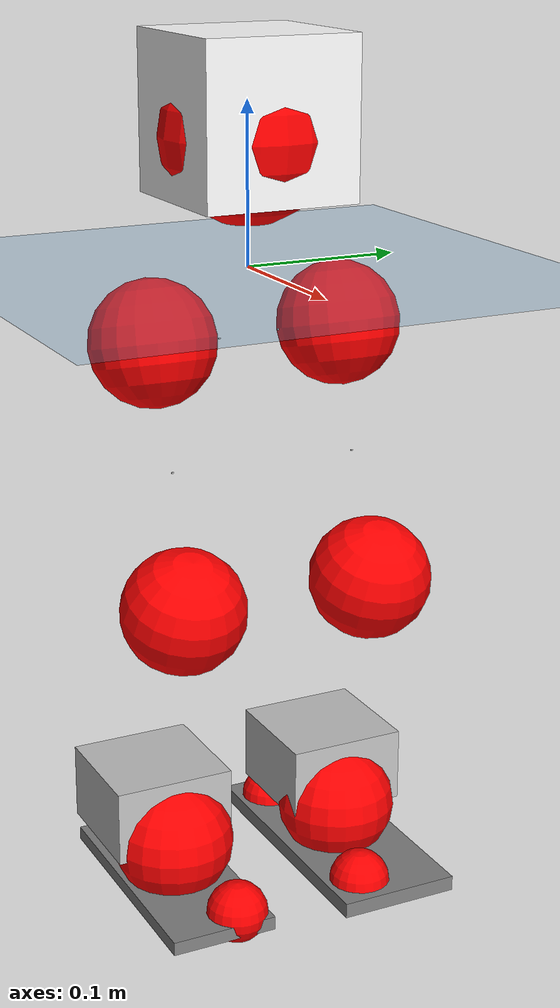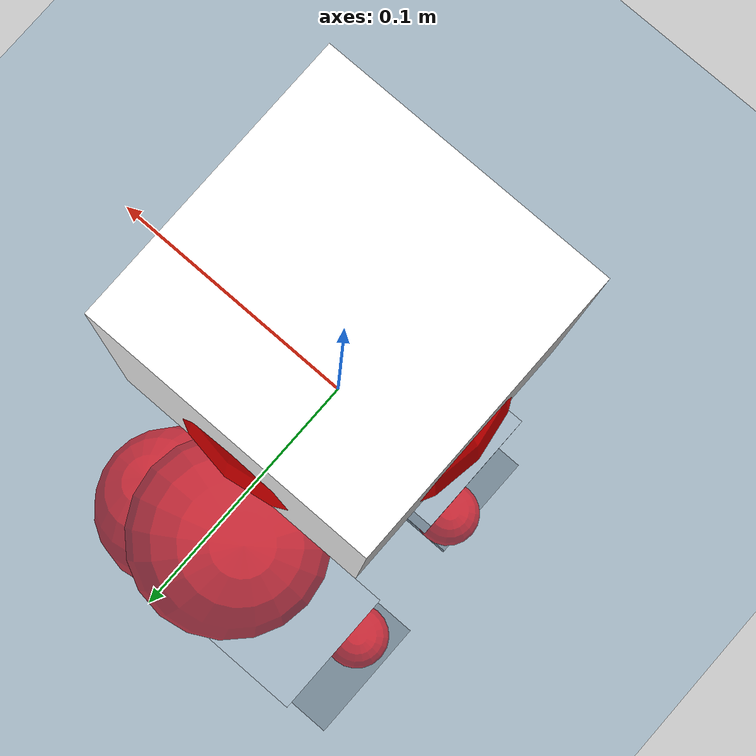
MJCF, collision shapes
<mujoco model="pi_12dof_release_v1">
  <compiler angle="radian" assetdir="assets" balanceinertia="true" inertiafromgeom="false"/>

  <option timestep="0.005" density="1.2" viscosity="2e-05"/>

  <size nkey="1"/>

  <visual>
    <quality shadowsize="8192"/>
    <map shadowclip="0.5"/>
  </visual>

  <default>
    <default class="/">
      <joint armature="0.01" damping="0.01" frictionloss="0.01"/>
      <geom contype="0" conaffinity="0" group="1" solref="-1000 -80"/>
      <site size="0.01 0.005 0.005" group="5"/>
      <general forcelimited="true" biastype="affine" gainprm="20" biasprm="0 -20 -0.5"/>
      <default class="foot">
        <geom size="0.0845 0.036 0.005" type="box" condim="6" group="4" priority="1" friction="0.9 0.2 0.2" solimp="0.015 1 0.005"/>
      </default>
      <default class="reward_collision_sphere">
        <geom group="5" rgba="1 0 0 1"/>
      </default>
    </default>
  </default>

  <asset>
    <texture type="skybox" colorspace="auto" name="//unnamed_texture_0" builtin="gradient" rgb1="0.95 0.95 0.95" rgb2="0.95 0.95 0.95" width="100" height="600"/>
    <texture type="2d" colorspace="auto" name="texplane" builtin="checker" rgb1="0.345 0.575 0.748" rgb2="0.345 0.575 0.748" markrgb="1 1 1" width="512" height="512"/>
    <material name="MatPlane" class="/" texture="texplane" texuniform="true" texrepeat="2 2" specular="0.9"/>
    <mesh name="baselink_1" class="/" file="baselink_1.STL"/>
    <mesh name="r_hip_pitch_link" class="/" file="r_hip_pitch_link.STL"/>
    <mesh name="r_hip_roll_link" class="/" file="r_hip_roll_link.STL"/>
    <mesh name="r_thigh_link" class="/" file="r_thigh_link.STL"/>
    <mesh name="r_calf_link" class="/" file="r_calf_link.STL"/>
    <mesh name="r_ankle_pitch_link" class="/" file="r_ankle_pitch_link.STL"/>
    <mesh name="r_ankle_roll_link" class="/" file="r_ankle_roll_link.STL"/>
    <mesh name="l_hip_pitch_link" class="/" file="l_hip_pitch_link.STL"/>
    <mesh name="l_hip_roll_link" class="/" file="l_hip_roll_link.STL"/>
    <mesh name="l_thigh_link" class="/" file="l_thigh_link.STL"/>
    <mesh name="l_calf_link" class="/" file="l_calf_link.STL"/>
    <mesh name="l_ankle_pitch_link" class="/" file="l_ankle_pitch_link.STL"/>
    <mesh name="l_ankle_roll_link" class="/" file="l_ankle_roll_link.STL"/>
  </asset>

  <worldbody>
    <geom name="floor" class="/" size="100 100 0.125" type="plane" group="0" material="MatPlane"/>
    <light name="toplight_shadow" class="/" pos="0 0 5" dir="0.0990148 0.0990148 -0.990148" type="directional" ambient="0.04 0.04 0.04" diffuse="0.55 0.55 0.55" specular="0.12 0.12 0.12"/>
    <light name="toplight_fill" class="/" pos="0 0 5" dir="0.0990148 0.0990148 -0.990148" type="directional" castshadow="false" ambient="0.04 0.04 0.04" diffuse="0.3 0.3 0.3" specular="0.08 0.08 0.08"/>
    <body name="trunk" pos="0.000150002 6.17497e-06 -0.00271565" quat="1 0.000101624 2.08631e-05 3.34294e-05">
      <inertial pos="0.00149893 0.00237073 0.0500715" quat="0.695306 0.00967513 0.00940654 0.718587" mass="1.9796" diaginertia="0.00844795 0.00291334 0.00906571"/>
      <joint name="//unnamed_joint_0" type="free"/>
      <geom name="//unnamed_geom_1" class="/" type="mesh" density="0" rgba="1 1 1 1" mesh="baselink_1"/>
      <geom name="//unnamed_geom_2" class="/" size="0.0490834 0.0490834 0.0490834" pos="0 0 0.0938844" type="box" rgba="1 1 1 1"/>
      <geom name="//unnamed_geom_3" class="reward_collision_sphere" size="0.0539917" pos="0 0 0.0821489"/>
      <site name="imu" class="/" pos="0.00246718 -0.0103274 0.0037992" size="0.00981668"/>
      <camera name="track" class="/" pos="0 -1.60543 0" quat="0.707107 0.707107 0 0" mode="trackcom"/>
      <camera name="ego_camera" class="/" pos="0.0726551 0 0.21124" quat="-0.5 -0.5 0.5 0.5"/>
      <body name="r_hip_pitch_link" pos="0.00215077 -0.0203983 -0.0389302" quat="0.992194 -6.80609e-06 -0.124706 -4.06757e-06">
        <inertial pos="-0.00181835 -0.0438187 -0.00172283" quat="-0.0222479 0.703081 -0.0298837 0.710134" mass="0.35158" diaginertia="9.25069e-05 3.18924e-05 0.000190032"/>
        <joint name="r_hip_pitch_joint" class="/" pos="0 0 0" axis="0.00646032 -0.999948 0.00785744" stiffness="0.011537" range="-1.72796 1.19661" armature="0.00873201" damping="0.00312639" frictionloss="0.00844849"/>
        <geom name="//unnamed_geom_4" class="/" type="mesh" density="0" rgba="0.75294 0.75294 0.75294 1" mesh="r_hip_pitch_link"/>
        <geom name="//unnamed_geom_5" class="/" size="0.000490834 0.000490834 0.000490834" type="box" rgba="0.75294 0.75294 0.75294 1"/>
        <body name="r_hip_roll_link" pos="0.000507905 -0.0438147 0.00178824" quat="1 -6.89507e-06 3.97994e-06 -6.4284e-06">
          <inertial pos="-0.00151613 0.000423387 -0.0741125" quat="0.705945 -0.0791637 -0.0826783 0.698956" mass="0.353215" diaginertia="0.000284129 9.27314e-05 0.000268763"/>
          <joint name="r_hip_roll_joint" class="/" pos="0 0 0" axis="-0.999914 0.00519763 0.0120039" range="-0.124505 0.51417" armature="0.0103273" damping="0.0157723" frictionloss="0.0108821"/>
          <geom name="//unnamed_geom_6" class="/" type="mesh" density="0" rgba="0.75294 0.75294 0.75294 1" mesh="r_hip_roll_link"/>
          <geom name="//unnamed_geom_7" class="/" size="0.000490834 0.000490834 0.000490834" type="box" rgba="0.75294 0.75294 0.75294 1"/>
          <geom name="//unnamed_geom_8" class="reward_collision_sphere" size="0.0392667"/>
          <body name="r_thigh_link" pos="-0.000689184 0.00325766 -0.0785997" quat="0.999999 0.000153533 0.000621539 -0.0011379">
            <inertial pos="-0.000271247 0.000680406 -0.0561185" quat="0.737096 0.675788 -0.000605756 0.000574342" mass="0.102058" diaginertia="0.000106511 3.10398e-05 0.000123613"/>
            <joint name="r_thigh_joint" class="/" pos="0 0 0" axis="0.00112603 0.00149579 -0.999998" range="-0.307066 0.54207" armature="0.0111972" damping="0.00492371" frictionloss="0.0100838"/>
            <geom name="//unnamed_geom_9" class="/" type="mesh" density="0" rgba="0.75294 0.75294 0.75294 1" mesh="r_thigh_link"/>
            <geom name="//unnamed_geom_10" class="/" size="0.000490834 0.000490834 0.000490834" type="box" rgba="0.75294 0.75294 0.75294 1"/>
            <body name="r_calf_link" pos="0.00158267 -0.00356417 -0.0840642" quat="0.947217 -0.000374725 0.320593 0.000233475">
              <inertial pos="-0.000309555 -0.00152494 -0.0809901" quat="0.999984 -0.00193812 -0.000816109 0.00519172" mass="0.744795" diaginertia="0.0029237 0.00110292 0.000387984"/>
              <joint name="r_calf_joint" class="/" pos="0 0 0" axis="0.0114363 -0.999917 0.00587631" stiffness="0.0117623" range="-1.67596 0.64159" armature="0.00957164" damping="0.00942506" frictionloss="0.0098656"/>
              <geom name="//unnamed_geom_11" class="/" type="mesh" density="0" rgba="0.75294 0.75294 0.75294 1" mesh="r_calf_link"/>
              <geom name="//unnamed_geom_12" class="/" size="0.000490834 0.000490834 0.000490834" type="box" rgba="0.75294 0.75294 0.75294 1"/>
              <geom name="//unnamed_geom_13" class="reward_collision_sphere" size="0.0392667"/>
              <body name="r_ankle_pitch_link" pos="0.00250457 0.00277026 -0.163863" quat="0.980062 2.26936e-05 -0.198692 6.3317e-06">
                <inertial pos="0.00499679 0.00399542 -0.000187327" quat="0.0017455 0.707184 -0.00151537 0.707026" mass="0.166903" diaginertia="0.000260484 7.45822e-05 0.000270369"/>
                <joint name="r_ankle_pitch_joint" class="/" pos="0 0 0" axis="0.00562187 -0.999984 0.000916451" range="-1.34761 0.528513" armature="0.00997365" damping="0.0229713" frictionloss="0.011185"/>
                <geom name="//unnamed_geom_14" class="/" type="mesh" density="0" rgba="0.75294 0.75294 0.75294 1" mesh="r_ankle_pitch_link"/>
                <geom name="//unnamed_geom_15" class="/" size="0.0382851 0.0392667 0.0245417" type="box" rgba="0.75294 0.75294 0.75294 1"/>
                <body name="r_ankle_roll_link" pos="0.0758053 0.00272855 0.00218989" quat="1 -0.000171271 0.00042809 0.000149223">
                  <inertial pos="-0.0241123 0.00071035 -0.014764" quat="0.559723 0.430834 0.434127 0.559129" mass="0.480253" diaginertia="0.000993992 0.00034259 0.000628223"/>
                  <joint name="r_ankle_roll_joint" class="/" pos="0 0 0" axis="-0.999997 -0.00118895 0.00231232" range="-0.170357 0.171075" armature="0.0097476" damping="0.00815822" frictionloss="0.0108253"/>
                  <geom name="//unnamed_geom_16" class="/" type="mesh" density="0" rgba="0.75294 0.75294 0.75294 1" mesh="r_ankle_roll_link"/>
                  <geom name="//unnamed_geom_17" class="/" type="mesh" rgba="0.75294 0.75294 0.75294 1" mesh="r_ankle_roll_link"/>
                  <geom name="right_foot" class="foot" size="0.0803197 0.0345038 0.00436329" pos="-0.0494054 0 -0.0516364"/>
                  <geom name="//unnamed_geom_19" class="reward_collision_sphere" size="0.0392667" pos="-0.0484367 0 -0.0234711"/>
                  <geom name="//unnamed_geom_20" class="reward_collision_sphere" size="0.0196334" pos="0.014531 0.0160543 -0.0469422"/>
                  <geom name="//unnamed_geom_21" class="reward_collision_sphere" size="0.0196334" pos="-0.116248 0.0160543 -0.0469422"/>
                  <site name="right_foot" class="foot" pos="-0.0494054 0 -0.0516364" size="0.00981668"/>
                </body>
              </body>
            </body>
          </body>
        </body>
      </body>
      <body name="l_hip_pitch_link" pos="-0.00118461 0.0210102 -0.0384257" quat="0.992196 0.000276564 -0.124691 0.00033659">
        <inertial pos="-0.00078748 0.0404508 -0.0010712" quat="-0.0434685 0.702235 0.0247243 0.710187" mass="0.360738" diaginertia="0.000110214 3.6187e-05 0.00022063"/>
        <joint name="l_hip_pitch_joint" class="/" pos="0 0 0" axis="0.000373258 0.99999 0.00437849" range="-1.19231 1.69933" armature="0.0110265" damping="0.0210921" frictionloss="0.00844217"/>
        <geom name="//unnamed_geom_22" class="/" type="mesh" density="0" rgba="0.75294 0.75294 0.75294 1" mesh="l_hip_pitch_link"/>
        <geom name="//unnamed_geom_23" class="/" size="0.000490834 0.000490834 0.000490834" type="box" rgba="0.75294 0.75294 0.75294 1"/>
        <body name="l_hip_roll_link" pos="-0.000613508 0.0424256 0.000388843" quat="1 -0.000177106 0.000669952 0.000288737">
          <inertial pos="-0.000629241 -0.00276489 -0.0720419" quat="0.700829 -0.0726457 -0.0808482 0.705" mass="0.365789" diaginertia="0.000296832 9.29291e-05 0.000301336"/>
          <joint name="l_hip_roll_joint" class="/" pos="0 0 0" axis="-0.999991 -0.00419777 -0.00101428" range="-0.46182 0.0688131" armature="0.00965634" damping="0.00818568" frictionloss="0.0093765"/>
          <geom name="//unnamed_geom_24" class="/" type="mesh" density="0" rgba="0.75294 0.75294 0.75294 1" mesh="l_hip_roll_link"/>
          <geom name="//unnamed_geom_25" class="/" size="0.000490834 0.000490834 0.000490834" type="box" rgba="0.75294 0.75294 0.75294 1"/>
          <geom name="//unnamed_geom_26" class="reward_collision_sphere" size="0.0392667"/>
          <body name="l_thigh_link" pos="0.00239767 -0.00104696 -0.0809319" quat="0.999999 0.000811574 0.00121135 -0.000130007">
            <inertial pos="0.00305118 -0.00203656 -0.0583795" quat="0.675252 0.737587 -0.000402401 0.000190139" mass="0.105147" diaginertia="0.000108599 3.32554e-05 0.000134373"/>
            <joint name="l_thigh_joint" class="/" pos="0 0 0" axis="0.00296418 0.000280649 -0.999996" stiffness="0.00119305" range="-0.607203 0.244527" armature="0.0092461" damping="0.0206244" frictionloss="0.00847961"/>
            <geom name="//unnamed_geom_27" class="/" type="mesh" density="0" rgba="0.75294 0.75294 0.75294 1" mesh="l_thigh_link"/>
            <geom name="//unnamed_geom_28" class="/" size="0.000490834 0.000490834 0.000490834" type="box" rgba="0.75294 0.75294 0.75294 1"/>
            <body name="l_calf_link" pos="0.000254798 0.00315212 -0.0818606" quat="0.947599 0.000174469 0.319458 -0.00142652">
              <inertial pos="-0.000667592 0.00405383 -0.0839735" quat="0.99994 0.0105796 -0.00257443 -0.00113048" mass="0.747424" diaginertia="0.00299638 0.00110465 0.000376646"/>
              <joint name="l_calf_joint" class="/" pos="0 0 0" axis="0.00588936 0.999977 0.00327948" stiffness="0.00607675" range="-0.661839 1.61954" armature="0.00960064" damping="0.00555109" frictionloss="0.00859332"/>
              <geom name="//unnamed_geom_29" class="/" type="mesh" density="0" rgba="0.75294 0.75294 0.75294 1" mesh="l_calf_link"/>
              <geom name="//unnamed_geom_30" class="/" size="0.000490834 0.000490834 0.000490834" type="box" rgba="0.75294 0.75294 0.75294 1"/>
              <geom name="//unnamed_geom_31" class="reward_collision_sphere" size="0.0392667"/>
              <body name="l_ankle_pitch_link" pos="0.000285041 0.000655335 -0.165987" quat="0.980158 -0.000231122 -0.198218 0.000102703">
                <inertial pos="0.00458406 0.00108246 0.00199829" quat="-0.000809384 0.713829 0.0123949 0.700209" mass="0.163047" diaginertia="0.000257488 7.18219e-05 0.000263314"/>
                <joint name="l_ankle_pitch_joint" class="/" pos="0 0 0" axis="-0.00590019 0.999915 0.0116344" range="-0.516022 1.31434" armature="0.0100498" damping="0" frictionloss="0.0101154"/>
                <geom name="//unnamed_geom_32" class="/" type="mesh" density="0" rgba="0.75294 0.75294 0.75294 1" mesh="l_ankle_pitch_link"/>
                <geom name="//unnamed_geom_33" class="/" size="0.0382851 0.0392667 0.0245417" type="box" rgba="0.75294 0.75294 0.75294 1"/>
                <body name="l_ankle_roll_link" pos="0.074442 -0.00195752 0.000269202" quat="0.999999 -0.000619334 -0.000944729 0.000820885">
                  <inertial pos="-0.02276 -0.00027996 -0.0167722" quat="0.564497 0.428221 0.424812 0.563476" mass="0.463927" diaginertia="0.000933071 0.000335639 0.000630477"/>
                  <joint name="l_ankle_roll_joint" class="/" pos="0 0 0" axis="-0.999957 -0.000783168 0.0092222" range="-0.149474 0.117665" armature="0.00954773" damping="0.00392315" frictionloss="0.0088704"/>
                  <geom name="//unnamed_geom_34" class="/" type="mesh" density="0" rgba="0.75294 0.75294 0.75294 1" mesh="l_ankle_roll_link"/>
                  <geom name="//unnamed_geom_35" class="/" type="mesh" rgba="0.75294 0.75294 0.75294 1" mesh="l_ankle_roll_link"/>
                  <geom name="left_foot" class="foot" size="0.0893149 0.0395036 0.00491384" pos="-0.0494054 0 -0.0516364"/>
                  <geom name="//unnamed_geom_37" class="reward_collision_sphere" size="0.0392667" pos="-0.0484367 0 -0.0234711"/>
                  <geom name="//unnamed_geom_38" class="reward_collision_sphere" size="0.0196334" pos="0.014531 -0.0160543 -0.0469422"/>
                  <geom name="//unnamed_geom_39" class="reward_collision_sphere" size="0.0196334" pos="-0.116248 -0.0160543 -0.0469422"/>
                  <site name="left_foot" class="foot" pos="-0.0494054 0 -0.0516364" size="0.00981668"/>
                </body>
              </body>
            </body>
          </body>
        </body>
      </body>
    </body>
  </worldbody>

  <contact>
    <pair class="/" geom1="floor" geom2="right_foot" name="//unnamed_contact_1"/>
    <pair class="/" geom1="floor" geom2="left_foot" name="//unnamed_contact_0"/>
  </contact>

  <actuator>
    <general name="r_hip_pitch_joint" class="/" joint="r_hip_pitch_joint" forcerange="-18.5661 18.5661" gainprm="19.1995" biasprm="0 -19.1995 -0.490257"/>
    <general name="r_hip_roll_joint" class="/" joint="r_hip_roll_joint" forcerange="-20.455 20.455" gainprm="19.1995" biasprm="0 -19.1995 -0.490257"/>
    <general name="r_thigh_joint" class="/" joint="r_thigh_joint" forcerange="-18.833 18.833" gainprm="19.1995" biasprm="0 -19.1995 -0.490257"/>
    <general name="r_calf_joint" class="/" joint="r_calf_joint" forcerange="-20.8875 20.8875" gainprm="19.1995" biasprm="0 -19.1995 -0.490257"/>
    <general name="r_ankle_pitch_joint" class="/" joint="r_ankle_pitch_joint" forcerange="-22.528 22.528" gainprm="19.1995" biasprm="0 -19.1995 -0.490257"/>
    <general name="r_ankle_roll_joint" class="/" joint="r_ankle_roll_joint" forcerange="-22.6544 22.6544" gainprm="19.1995" biasprm="0 -19.1995 -0.490257"/>
    <general name="l_hip_pitch_joint" class="/" joint="l_hip_pitch_joint" forcerange="-19.0309 19.0309" gainprm="19.1995" biasprm="0 -19.1995 -0.490257"/>
    <general name="l_hip_roll_joint" class="/" joint="l_hip_roll_joint" forcerange="-19.0883 19.0883" gainprm="19.1995" biasprm="0 -19.1995 -0.490257"/>
    <general name="l_thigh_joint" class="/" joint="l_thigh_joint" forcerange="-20.3208 20.3208" gainprm="19.1995" biasprm="0 -19.1995 -0.490257"/>
    <general name="l_calf_joint" class="/" joint="l_calf_joint" forcerange="-20.5837 20.5837" gainprm="19.1995" biasprm="0 -19.1995 -0.490257"/>
    <general name="l_ankle_pitch_joint" class="/" joint="l_ankle_pitch_joint" forcerange="-20.9341 20.9341" gainprm="19.1995" biasprm="0 -19.1995 -0.490257"/>
    <general name="l_ankle_roll_joint" class="/" joint="l_ankle_roll_joint" forcerange="-19.4112 19.4112" gainprm="19.1995" biasprm="0 -19.1995 -0.490257"/>
  </actuator>

  <sensor>
    <gyro site="imu" name="imu_angular_velocity"/>
    <velocimeter site="imu" name="imu_linear_velocity"/>
    <framelinvel objtype="site" objname="left_foot" name="left_foot_global_linear_velocity"/>
    <framelinvel objtype="site" objname="right_foot" name="right_foot_global_linear_velocity"/>
  </sensor>

  <keyframe>
    <key name="home" qpos="0 0 0.291 1 0 0 0 0.4 0 0 -0.8 0.4 0 -0.4 0 0 0.8 -0.4 0"/>
  </keyframe>
</mujoco>
